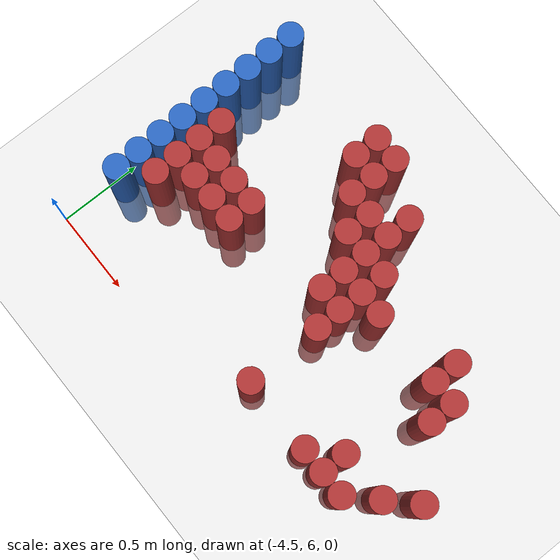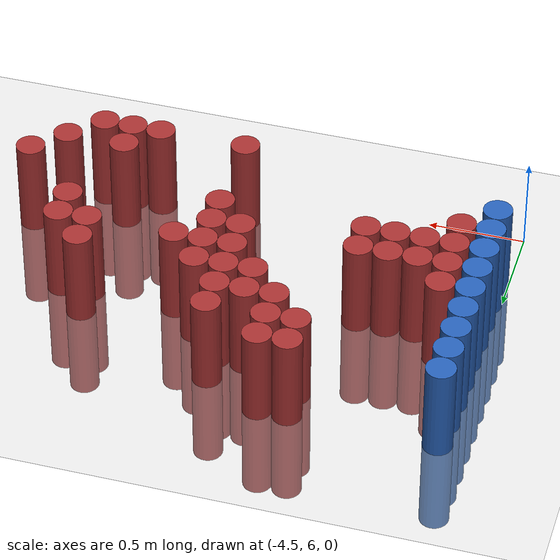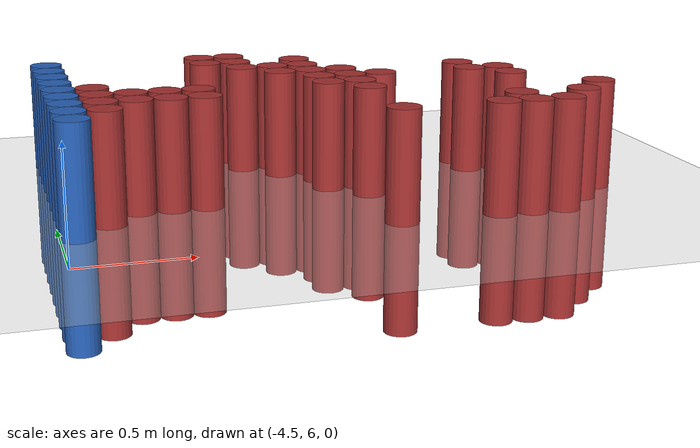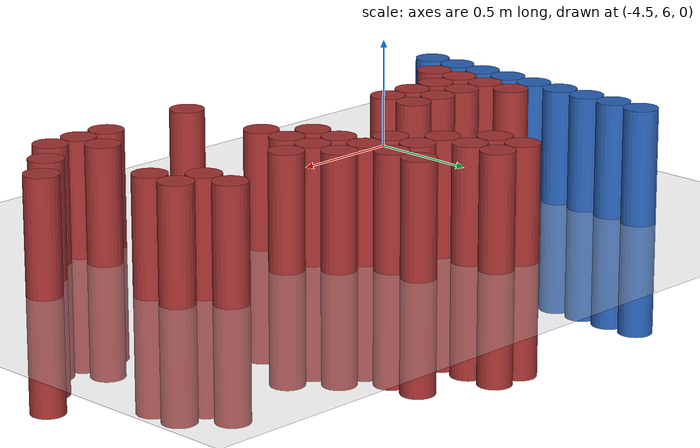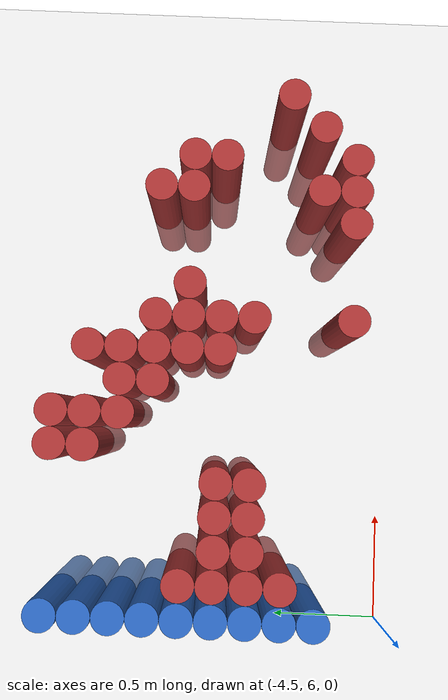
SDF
<sdf version="1.6">
 <world name="default">
  <model name="ground_plane">
   <static>1</static>
   <link name="link">
    <collision name="collision">
     <geometry><plane><normal>0 0 1</normal><size>100 100</size></plane></geometry>
     <surface><friction><ode><mu>100</mu><mu2>50</mu2></ode></friction></surface>
    </collision>
    <visual name="visual">
     <cast_shadows>0</cast_shadows>
     <geometry><plane><normal>0 0 1</normal><size>100 100</size></plane></geometry>
     <material>
      <script><uri>file://media/materials/scripts/gazebo.material</uri><name>Gazebo/Grey</name></script>
     </material>
    </visual>
   </link>
  </model>
  <model name="unit_cylinder_104">
   <static>1</static>
   <pose>-4.425000 6.375000 0.000000 0.000000 0.000000 0.000000</pose>
   <link name="link">
    <inertial>
     <mass>1</mass>
     <inertia><ixx>0.145833</ixx><ixy>0</ixy><ixz>0</ixz><iyy>0.145833</iyy><iyz>0</iyz><izz>0.125</izz></inertia>
    </inertial>
    <collision name="collision">
     <geometry><cylinder><radius>0.075000</radius><length>1</length></cylinder></geometry>
    </collision>
    <visual name="visual">
     <geometry><cylinder><radius>0.075000</radius><length>1</length></cylinder></geometry>
     <material>
      <ambient>0.152000 0.379000 0.720000 1</ambient>
      <diffuse>0.152000 0.379000 0.720000 1</diffuse>
     </material>
     <material>
      <script><name>Gazebo/Grey</name><uri>file://media/materials/scripts/gazebo.material</uri></script>
     </material>
    </visual>
   </link>
  </model>
  <model name="unit_cylinder_105">
   <static>1</static>
   <pose>-4.425000 6.525000 0.000000 0.000000 0.000000 0.000000</pose>
   <link name="link">
    <inertial>
     <mass>1</mass>
     <inertia><ixx>0.145833</ixx><ixy>0</ixy><ixz>0</ixz><iyy>0.145833</iyy><iyz>0</iyz><izz>0.125</izz></inertia>
    </inertial>
    <collision name="collision">
     <geometry><cylinder><radius>0.075000</radius><length>1</length></cylinder></geometry>
    </collision>
    <visual name="visual">
     <geometry><cylinder><radius>0.075000</radius><length>1</length></cylinder></geometry>
     <material>
      <ambient>0.152000 0.379000 0.720000 1</ambient>
      <diffuse>0.152000 0.379000 0.720000 1</diffuse>
     </material>
     <material>
      <script><name>Gazebo/Grey</name><uri>file://media/materials/scripts/gazebo.material</uri></script>
     </material>
    </visual>
   </link>
  </model>
  <model name="unit_cylinder_106">
   <static>1</static>
   <pose>-4.425000 6.675000 0.000000 0.000000 0.000000 0.000000</pose>
   <link name="link">
    <inertial>
     <mass>1</mass>
     <inertia><ixx>0.145833</ixx><ixy>0</ixy><ixz>0</ixz><iyy>0.145833</iyy><iyz>0</iyz><izz>0.125</izz></inertia>
    </inertial>
    <collision name="collision">
     <geometry><cylinder><radius>0.075000</radius><length>1</length></cylinder></geometry>
    </collision>
    <visual name="visual">
     <geometry><cylinder><radius>0.075000</radius><length>1</length></cylinder></geometry>
     <material>
      <ambient>0.152000 0.379000 0.720000 1</ambient>
      <diffuse>0.152000 0.379000 0.720000 1</diffuse>
     </material>
     <material>
      <script><name>Gazebo/Grey</name><uri>file://media/materials/scripts/gazebo.material</uri></script>
     </material>
    </visual>
   </link>
  </model>
  <model name="unit_cylinder_107">
   <static>1</static>
   <pose>-4.425000 6.825000 0.000000 0.000000 0.000000 0.000000</pose>
   <link name="link">
    <inertial>
     <mass>1</mass>
     <inertia><ixx>0.145833</ixx><ixy>0</ixy><ixz>0</ixz><iyy>0.145833</iyy><iyz>0</iyz><izz>0.125</izz></inertia>
    </inertial>
    <collision name="collision">
     <geometry><cylinder><radius>0.075000</radius><length>1</length></cylinder></geometry>
    </collision>
    <visual name="visual">
     <geometry><cylinder><radius>0.075000</radius><length>1</length></cylinder></geometry>
     <material>
      <ambient>0.152000 0.379000 0.720000 1</ambient>
      <diffuse>0.152000 0.379000 0.720000 1</diffuse>
     </material>
     <material>
      <script><name>Gazebo/Grey</name><uri>file://media/materials/scripts/gazebo.material</uri></script>
     </material>
    </visual>
   </link>
  </model>
  <model name="unit_cylinder_108">
   <static>1</static>
   <pose>-4.425000 6.975000 0.000000 0.000000 0.000000 0.000000</pose>
   <link name="link">
    <inertial>
     <mass>1</mass>
     <inertia><ixx>0.145833</ixx><ixy>0</ixy><ixz>0</ixz><iyy>0.145833</iyy><iyz>0</iyz><izz>0.125</izz></inertia>
    </inertial>
    <collision name="collision">
     <geometry><cylinder><radius>0.075000</radius><length>1</length></cylinder></geometry>
    </collision>
    <visual name="visual">
     <geometry><cylinder><radius>0.075000</radius><length>1</length></cylinder></geometry>
     <material>
      <ambient>0.152000 0.379000 0.720000 1</ambient>
      <diffuse>0.152000 0.379000 0.720000 1</diffuse>
     </material>
     <material>
      <script><name>Gazebo/Grey</name><uri>file://media/materials/scripts/gazebo.material</uri></script>
     </material>
    </visual>
   </link>
  </model>
  <model name="unit_cylinder_109">
   <static>1</static>
   <pose>-4.425000 7.125000 0.000000 0.000000 0.000000 0.000000</pose>
   <link name="link">
    <inertial>
     <mass>1</mass>
     <inertia><ixx>0.145833</ixx><ixy>0</ixy><ixz>0</ixz><iyy>0.145833</iyy><iyz>0</iyz><izz>0.125</izz></inertia>
    </inertial>
    <collision name="collision">
     <geometry><cylinder><radius>0.075000</radius><length>1</length></cylinder></geometry>
    </collision>
    <visual name="visual">
     <geometry><cylinder><radius>0.075000</radius><length>1</length></cylinder></geometry>
     <material>
      <ambient>0.152000 0.379000 0.720000 1</ambient>
      <diffuse>0.152000 0.379000 0.720000 1</diffuse>
     </material>
     <material>
      <script><name>Gazebo/Grey</name><uri>file://media/materials/scripts/gazebo.material</uri></script>
     </material>
    </visual>
   </link>
  </model>
  <model name="unit_cylinder_110">
   <static>1</static>
   <pose>-4.425000 7.275000 0.000000 0.000000 0.000000 0.000000</pose>
   <link name="link">
    <inertial>
     <mass>1</mass>
     <inertia><ixx>0.145833</ixx><ixy>0</ixy><ixz>0</ixz><iyy>0.145833</iyy><iyz>0</iyz><izz>0.125</izz></inertia>
    </inertial>
    <collision name="collision">
     <geometry><cylinder><radius>0.075000</radius><length>1</length></cylinder></geometry>
    </collision>
    <visual name="visual">
     <geometry><cylinder><radius>0.075000</radius><length>1</length></cylinder></geometry>
     <material>
      <ambient>0.152000 0.379000 0.720000 1</ambient>
      <diffuse>0.152000 0.379000 0.720000 1</diffuse>
     </material>
     <material>
      <script><name>Gazebo/Grey</name><uri>file://media/materials/scripts/gazebo.material</uri></script>
     </material>
    </visual>
   </link>
  </model>
  <model name="unit_cylinder_111">
   <static>1</static>
   <pose>-4.425000 7.425000 0.000000 0.000000 0.000000 0.000000</pose>
   <link name="link">
    <inertial>
     <mass>1</mass>
     <inertia><ixx>0.145833</ixx><ixy>0</ixy><ixz>0</ixz><iyy>0.145833</iyy><iyz>0</iyz><izz>0.125</izz></inertia>
    </inertial>
    <collision name="collision">
     <geometry><cylinder><radius>0.075000</radius><length>1</length></cylinder></geometry>
    </collision>
    <visual name="visual">
     <geometry><cylinder><radius>0.075000</radius><length>1</length></cylinder></geometry>
     <material>
      <ambient>0.152000 0.379000 0.720000 1</ambient>
      <diffuse>0.152000 0.379000 0.720000 1</diffuse>
     </material>
     <material>
      <script><name>Gazebo/Grey</name><uri>file://media/materials/scripts/gazebo.material</uri></script>
     </material>
    </visual>
   </link>
  </model>
  <model name="unit_cylinder_112">
   <static>1</static>
   <pose>-4.425000 7.575000 0.000000 0.000000 0.000000 0.000000</pose>
   <link name="link">
    <inertial>
     <mass>1</mass>
     <inertia><ixx>0.145833</ixx><ixy>0</ixy><ixz>0</ixz><iyy>0.145833</iyy><iyz>0</iyz><izz>0.125</izz></inertia>
    </inertial>
    <collision name="collision">
     <geometry><cylinder><radius>0.075000</radius><length>1</length></cylinder></geometry>
    </collision>
    <visual name="visual">
     <geometry><cylinder><radius>0.075000</radius><length>1</length></cylinder></geometry>
     <material>
      <ambient>0.152000 0.379000 0.720000 1</ambient>
      <diffuse>0.152000 0.379000 0.720000 1</diffuse>
     </material>
     <material>
      <script><name>Gazebo/Grey</name><uri>file://media/materials/scripts/gazebo.material</uri></script>
     </material>
    </visual>
   </link>
  </model>
  <model name="unit_cylinder_129">
   <static>1</static>
   <pose>-4.275000 6.525000 0.000000 0.000000 0.000000 0.000000</pose>
   <link name="link">
    <inertial>
     <mass>1</mass>
     <inertia><ixx>0.145833</ixx><ixy>0</ixy><ixz>0</ixz><iyy>0.145833</iyy><iyz>0</iyz><izz>0.125</izz></inertia>
    </inertial>
    <collision name="collision">
     <geometry><cylinder><radius>0.075000</radius><length>1</length></cylinder></geometry>
    </collision>
    <visual name="visual">
     <geometry><cylinder><radius>0.075000</radius><length>1</length></cylinder></geometry>
     <material>
      <ambient>0.648000 0.192000 0.192000 1</ambient>
      <diffuse>0.648000 0.192000 0.192000 1</diffuse>
     </material>
     <material>
      <script><name>Gazebo/Grey</name><uri>file://media/materials/scripts/gazebo.material</uri></script>
     </material>
    </visual>
   </link>
  </model>
  <model name="unit_cylinder_130">
   <static>1</static>
   <pose>-4.275000 6.675000 0.000000 0.000000 0.000000 0.000000</pose>
   <link name="link">
    <inertial>
     <mass>1</mass>
     <inertia><ixx>0.145833</ixx><ixy>0</ixy><ixz>0</ixz><iyy>0.145833</iyy><iyz>0</iyz><izz>0.125</izz></inertia>
    </inertial>
    <collision name="collision">
     <geometry><cylinder><radius>0.075000</radius><length>1</length></cylinder></geometry>
    </collision>
    <visual name="visual">
     <geometry><cylinder><radius>0.075000</radius><length>1</length></cylinder></geometry>
     <material>
      <ambient>0.648000 0.192000 0.192000 1</ambient>
      <diffuse>0.648000 0.192000 0.192000 1</diffuse>
     </material>
     <material>
      <script><name>Gazebo/Grey</name><uri>file://media/materials/scripts/gazebo.material</uri></script>
     </material>
    </visual>
   </link>
  </model>
  <model name="unit_cylinder_131">
   <static>1</static>
   <pose>-4.275000 6.825000 0.000000 0.000000 0.000000 0.000000</pose>
   <link name="link">
    <inertial>
     <mass>1</mass>
     <inertia><ixx>0.145833</ixx><ixy>0</ixy><ixz>0</ixz><iyy>0.145833</iyy><iyz>0</iyz><izz>0.125</izz></inertia>
    </inertial>
    <collision name="collision">
     <geometry><cylinder><radius>0.075000</radius><length>1</length></cylinder></geometry>
    </collision>
    <visual name="visual">
     <geometry><cylinder><radius>0.075000</radius><length>1</length></cylinder></geometry>
     <material>
      <ambient>0.648000 0.192000 0.192000 1</ambient>
      <diffuse>0.648000 0.192000 0.192000 1</diffuse>
     </material>
     <material>
      <script><name>Gazebo/Grey</name><uri>file://media/materials/scripts/gazebo.material</uri></script>
     </material>
    </visual>
   </link>
  </model>
  <model name="unit_cylinder_132">
   <static>1</static>
   <pose>-4.275000 6.975000 0.000000 0.000000 0.000000 0.000000</pose>
   <link name="link">
    <inertial>
     <mass>1</mass>
     <inertia><ixx>0.145833</ixx><ixy>0</ixy><ixz>0</ixz><iyy>0.145833</iyy><iyz>0</iyz><izz>0.125</izz></inertia>
    </inertial>
    <collision name="collision">
     <geometry><cylinder><radius>0.075000</radius><length>1</length></cylinder></geometry>
    </collision>
    <visual name="visual">
     <geometry><cylinder><radius>0.075000</radius><length>1</length></cylinder></geometry>
     <material>
      <ambient>0.648000 0.192000 0.192000 1</ambient>
      <diffuse>0.648000 0.192000 0.192000 1</diffuse>
     </material>
     <material>
      <script><name>Gazebo/Grey</name><uri>file://media/materials/scripts/gazebo.material</uri></script>
     </material>
    </visual>
   </link>
  </model>
  <model name="unit_cylinder_136">
   <static>1</static>
   <pose>-4.125000 6.675000 0.000000 0.000000 0.000000 0.000000</pose>
   <link name="link">
    <inertial>
     <mass>1</mass>
     <inertia><ixx>0.145833</ixx><ixy>0</ixy><ixz>0</ixz><iyy>0.145833</iyy><iyz>0</iyz><izz>0.125</izz></inertia>
    </inertial>
    <collision name="collision">
     <geometry><cylinder><radius>0.075000</radius><length>1</length></cylinder></geometry>
    </collision>
    <visual name="visual">
     <geometry><cylinder><radius>0.075000</radius><length>1</length></cylinder></geometry>
     <material>
      <ambient>0.648000 0.192000 0.192000 1</ambient>
      <diffuse>0.648000 0.192000 0.192000 1</diffuse>
     </material>
     <material>
      <script><name>Gazebo/Grey</name><uri>file://media/materials/scripts/gazebo.material</uri></script>
     </material>
    </visual>
   </link>
  </model>
  <model name="unit_cylinder_137">
   <static>1</static>
   <pose>-4.125000 6.825000 0.000000 0.000000 0.000000 0.000000</pose>
   <link name="link">
    <inertial>
     <mass>1</mass>
     <inertia><ixx>0.145833</ixx><ixy>0</ixy><ixz>0</ixz><iyy>0.145833</iyy><iyz>0</iyz><izz>0.125</izz></inertia>
    </inertial>
    <collision name="collision">
     <geometry><cylinder><radius>0.075000</radius><length>1</length></cylinder></geometry>
    </collision>
    <visual name="visual">
     <geometry><cylinder><radius>0.075000</radius><length>1</length></cylinder></geometry>
     <material>
      <ambient>0.648000 0.192000 0.192000 1</ambient>
      <diffuse>0.648000 0.192000 0.192000 1</diffuse>
     </material>
     <material>
      <script><name>Gazebo/Grey</name><uri>file://media/materials/scripts/gazebo.material</uri></script>
     </material>
    </visual>
   </link>
  </model>
  <model name="unit_cylinder_145">
   <static>1</static>
   <pose>-3.975000 6.675000 0.000000 0.000000 0.000000 0.000000</pose>
   <link name="link">
    <inertial>
     <mass>1</mass>
     <inertia><ixx>0.145833</ixx><ixy>0</ixy><ixz>0</ixz><iyy>0.145833</iyy><iyz>0</iyz><izz>0.125</izz></inertia>
    </inertial>
    <collision name="collision">
     <geometry><cylinder><radius>0.075000</radius><length>1</length></cylinder></geometry>
    </collision>
    <visual name="visual">
     <geometry><cylinder><radius>0.075000</radius><length>1</length></cylinder></geometry>
     <material>
      <ambient>0.648000 0.192000 0.192000 1</ambient>
      <diffuse>0.648000 0.192000 0.192000 1</diffuse>
     </material>
     <material>
      <script><name>Gazebo/Grey</name><uri>file://media/materials/scripts/gazebo.material</uri></script>
     </material>
    </visual>
   </link>
  </model>
  <model name="unit_cylinder_146">
   <static>1</static>
   <pose>-3.975000 6.825000 0.000000 0.000000 0.000000 0.000000</pose>
   <link name="link">
    <inertial>
     <mass>1</mass>
     <inertia><ixx>0.145833</ixx><ixy>0</ixy><ixz>0</ixz><iyy>0.145833</iyy><iyz>0</iyz><izz>0.125</izz></inertia>
    </inertial>
    <collision name="collision">
     <geometry><cylinder><radius>0.075000</radius><length>1</length></cylinder></geometry>
    </collision>
    <visual name="visual">
     <geometry><cylinder><radius>0.075000</radius><length>1</length></cylinder></geometry>
     <material>
      <ambient>0.648000 0.192000 0.192000 1</ambient>
      <diffuse>0.648000 0.192000 0.192000 1</diffuse>
     </material>
     <material>
      <script><name>Gazebo/Grey</name><uri>file://media/materials/scripts/gazebo.material</uri></script>
     </material>
    </visual>
   </link>
  </model>
  <model name="unit_cylinder_150">
   <static>1</static>
   <pose>-3.825000 6.675000 0.000000 0.000000 0.000000 0.000000</pose>
   <link name="link">
    <inertial>
     <mass>1</mass>
     <inertia><ixx>0.145833</ixx><ixy>0</ixy><ixz>0</ixz><iyy>0.145833</iyy><iyz>0</iyz><izz>0.125</izz></inertia>
    </inertial>
    <collision name="collision">
     <geometry><cylinder><radius>0.075000</radius><length>1</length></cylinder></geometry>
    </collision>
    <visual name="visual">
     <geometry><cylinder><radius>0.075000</radius><length>1</length></cylinder></geometry>
     <material>
      <ambient>0.648000 0.192000 0.192000 1</ambient>
      <diffuse>0.648000 0.192000 0.192000 1</diffuse>
     </material>
     <material>
      <script><name>Gazebo/Grey</name><uri>file://media/materials/scripts/gazebo.material</uri></script>
     </material>
    </visual>
   </link>
  </model>
  <model name="unit_cylinder_151">
   <static>1</static>
   <pose>-3.825000 6.825000 0.000000 0.000000 0.000000 0.000000</pose>
   <link name="link">
    <inertial>
     <mass>1</mass>
     <inertia><ixx>0.145833</ixx><ixy>0</ixy><ixz>0</ixz><iyy>0.145833</iyy><iyz>0</iyz><izz>0.125</izz></inertia>
    </inertial>
    <collision name="collision">
     <geometry><cylinder><radius>0.075000</radius><length>1</length></cylinder></geometry>
    </collision>
    <visual name="visual">
     <geometry><cylinder><radius>0.075000</radius><length>1</length></cylinder></geometry>
     <material>
      <ambient>0.648000 0.192000 0.192000 1</ambient>
      <diffuse>0.648000 0.192000 0.192000 1</diffuse>
     </material>
     <material>
      <script><name>Gazebo/Grey</name><uri>file://media/materials/scripts/gazebo.material</uri></script>
     </material>
    </visual>
   </link>
  </model>
  <model name="unit_cylinder_157">
   <static>1</static>
   <pose>-3.675000 7.425000 0.000000 0.000000 0.000000 0.000000</pose>
   <link name="link">
    <inertial>
     <mass>1</mass>
     <inertia><ixx>0.145833</ixx><ixy>0</ixy><ixz>0</ixz><iyy>0.145833</iyy><iyz>0</iyz><izz>0.125</izz></inertia>
    </inertial>
    <collision name="collision">
     <geometry><cylinder><radius>0.075000</radius><length>1</length></cylinder></geometry>
    </collision>
    <visual name="visual">
     <geometry><cylinder><radius>0.075000</radius><length>1</length></cylinder></geometry>
     <material>
      <ambient>0.648000 0.192000 0.192000 1</ambient>
      <diffuse>0.648000 0.192000 0.192000 1</diffuse>
     </material>
     <material>
      <script><name>Gazebo/Grey</name><uri>file://media/materials/scripts/gazebo.material</uri></script>
     </material>
    </visual>
   </link>
  </model>
  <model name="unit_cylinder_158">
   <static>1</static>
   <pose>-3.675000 7.575000 0.000000 0.000000 0.000000 0.000000</pose>
   <link name="link">
    <inertial>
     <mass>1</mass>
     <inertia><ixx>0.145833</ixx><ixy>0</ixy><ixz>0</ixz><iyy>0.145833</iyy><iyz>0</iyz><izz>0.125</izz></inertia>
    </inertial>
    <collision name="collision">
     <geometry><cylinder><radius>0.075000</radius><length>1</length></cylinder></geometry>
    </collision>
    <visual name="visual">
     <geometry><cylinder><radius>0.075000</radius><length>1</length></cylinder></geometry>
     <material>
      <ambient>0.648000 0.192000 0.192000 1</ambient>
      <diffuse>0.648000 0.192000 0.192000 1</diffuse>
     </material>
     <material>
      <script><name>Gazebo/Grey</name><uri>file://media/materials/scripts/gazebo.material</uri></script>
     </material>
    </visual>
   </link>
  </model>
  <model name="unit_cylinder_164">
   <static>1</static>
   <pose>-3.525000 7.275000 0.000000 0.000000 0.000000 0.000000</pose>
   <link name="link">
    <inertial>
     <mass>1</mass>
     <inertia><ixx>0.145833</ixx><ixy>0</ixy><ixz>0</ixz><iyy>0.145833</iyy><iyz>0</iyz><izz>0.125</izz></inertia>
    </inertial>
    <collision name="collision">
     <geometry><cylinder><radius>0.075000</radius><length>1</length></cylinder></geometry>
    </collision>
    <visual name="visual">
     <geometry><cylinder><radius>0.075000</radius><length>1</length></cylinder></geometry>
     <material>
      <ambient>0.648000 0.192000 0.192000 1</ambient>
      <diffuse>0.648000 0.192000 0.192000 1</diffuse>
     </material>
     <material>
      <script><name>Gazebo/Grey</name><uri>file://media/materials/scripts/gazebo.material</uri></script>
     </material>
    </visual>
   </link>
  </model>
  <model name="unit_cylinder_165">
   <static>1</static>
   <pose>-3.525000 7.425000 0.000000 0.000000 0.000000 0.000000</pose>
   <link name="link">
    <inertial>
     <mass>1</mass>
     <inertia><ixx>0.145833</ixx><ixy>0</ixy><ixz>0</ixz><iyy>0.145833</iyy><iyz>0</iyz><izz>0.125</izz></inertia>
    </inertial>
    <collision name="collision">
     <geometry><cylinder><radius>0.075000</radius><length>1</length></cylinder></geometry>
    </collision>
    <visual name="visual">
     <geometry><cylinder><radius>0.075000</radius><length>1</length></cylinder></geometry>
     <material>
      <ambient>0.648000 0.192000 0.192000 1</ambient>
      <diffuse>0.648000 0.192000 0.192000 1</diffuse>
     </material>
     <material>
      <script><name>Gazebo/Grey</name><uri>file://media/materials/scripts/gazebo.material</uri></script>
     </material>
    </visual>
   </link>
  </model>
  <model name="unit_cylinder_166">
   <static>1</static>
   <pose>-3.525000 7.575000 0.000000 0.000000 0.000000 0.000000</pose>
   <link name="link">
    <inertial>
     <mass>1</mass>
     <inertia><ixx>0.145833</ixx><ixy>0</ixy><ixz>0</ixz><iyy>0.145833</iyy><iyz>0</iyz><izz>0.125</izz></inertia>
    </inertial>
    <collision name="collision">
     <geometry><cylinder><radius>0.075000</radius><length>1</length></cylinder></geometry>
    </collision>
    <visual name="visual">
     <geometry><cylinder><radius>0.075000</radius><length>1</length></cylinder></geometry>
     <material>
      <ambient>0.648000 0.192000 0.192000 1</ambient>
      <diffuse>0.648000 0.192000 0.192000 1</diffuse>
     </material>
     <material>
      <script><name>Gazebo/Grey</name><uri>file://media/materials/scripts/gazebo.material</uri></script>
     </material>
    </visual>
   </link>
  </model>
  <model name="unit_cylinder_174">
   <static>1</static>
   <pose>-3.375000 7.125000 0.000000 0.000000 0.000000 0.000000</pose>
   <link name="link">
    <inertial>
     <mass>1</mass>
     <inertia><ixx>0.145833</ixx><ixy>0</ixy><ixz>0</ixz><iyy>0.145833</iyy><iyz>0</iyz><izz>0.125</izz></inertia>
    </inertial>
    <collision name="collision">
     <geometry><cylinder><radius>0.075000</radius><length>1</length></cylinder></geometry>
    </collision>
    <visual name="visual">
     <geometry><cylinder><radius>0.075000</radius><length>1</length></cylinder></geometry>
     <material>
      <ambient>0.648000 0.192000 0.192000 1</ambient>
      <diffuse>0.648000 0.192000 0.192000 1</diffuse>
     </material>
     <material>
      <script><name>Gazebo/Grey</name><uri>file://media/materials/scripts/gazebo.material</uri></script>
     </material>
    </visual>
   </link>
  </model>
  <model name="unit_cylinder_175">
   <static>1</static>
   <pose>-3.375000 7.275000 0.000000 0.000000 0.000000 0.000000</pose>
   <link name="link">
    <inertial>
     <mass>1</mass>
     <inertia><ixx>0.145833</ixx><ixy>0</ixy><ixz>0</ixz><iyy>0.145833</iyy><iyz>0</iyz><izz>0.125</izz></inertia>
    </inertial>
    <collision name="collision">
     <geometry><cylinder><radius>0.075000</radius><length>1</length></cylinder></geometry>
    </collision>
    <visual name="visual">
     <geometry><cylinder><radius>0.075000</radius><length>1</length></cylinder></geometry>
     <material>
      <ambient>0.648000 0.192000 0.192000 1</ambient>
      <diffuse>0.648000 0.192000 0.192000 1</diffuse>
     </material>
     <material>
      <script><name>Gazebo/Grey</name><uri>file://media/materials/scripts/gazebo.material</uri></script>
     </material>
    </visual>
   </link>
  </model>
  <model name="unit_cylinder_183">
   <static>1</static>
   <pose>-3.225000 6.825000 0.000000 0.000000 0.000000 0.000000</pose>
   <link name="link">
    <inertial>
     <mass>1</mass>
     <inertia><ixx>0.145833</ixx><ixy>0</ixy><ixz>0</ixz><iyy>0.145833</iyy><iyz>0</iyz><izz>0.125</izz></inertia>
    </inertial>
    <collision name="collision">
     <geometry><cylinder><radius>0.075000</radius><length>1</length></cylinder></geometry>
    </collision>
    <visual name="visual">
     <geometry><cylinder><radius>0.075000</radius><length>1</length></cylinder></geometry>
     <material>
      <ambient>0.648000 0.192000 0.192000 1</ambient>
      <diffuse>0.648000 0.192000 0.192000 1</diffuse>
     </material>
     <material>
      <script><name>Gazebo/Grey</name><uri>file://media/materials/scripts/gazebo.material</uri></script>
     </material>
    </visual>
   </link>
  </model>
  <model name="unit_cylinder_184">
   <static>1</static>
   <pose>-3.225000 6.975000 0.000000 0.000000 0.000000 0.000000</pose>
   <link name="link">
    <inertial>
     <mass>1</mass>
     <inertia><ixx>0.145833</ixx><ixy>0</ixy><ixz>0</ixz><iyy>0.145833</iyy><iyz>0</iyz><izz>0.125</izz></inertia>
    </inertial>
    <collision name="collision">
     <geometry><cylinder><radius>0.075000</radius><length>1</length></cylinder></geometry>
    </collision>
    <visual name="visual">
     <geometry><cylinder><radius>0.075000</radius><length>1</length></cylinder></geometry>
     <material>
      <ambient>0.648000 0.192000 0.192000 1</ambient>
      <diffuse>0.648000 0.192000 0.192000 1</diffuse>
     </material>
     <material>
      <script><name>Gazebo/Grey</name><uri>file://media/materials/scripts/gazebo.material</uri></script>
     </material>
    </visual>
   </link>
  </model>
  <model name="unit_cylinder_185">
   <static>1</static>
   <pose>-3.225000 7.125000 0.000000 0.000000 0.000000 0.000000</pose>
   <link name="link">
    <inertial>
     <mass>1</mass>
     <inertia><ixx>0.145833</ixx><ixy>0</ixy><ixz>0</ixz><iyy>0.145833</iyy><iyz>0</iyz><izz>0.125</izz></inertia>
    </inertial>
    <collision name="collision">
     <geometry><cylinder><radius>0.075000</radius><length>1</length></cylinder></geometry>
    </collision>
    <visual name="visual">
     <geometry><cylinder><radius>0.075000</radius><length>1</length></cylinder></geometry>
     <material>
      <ambient>0.648000 0.192000 0.192000 1</ambient>
      <diffuse>0.648000 0.192000 0.192000 1</diffuse>
     </material>
     <material>
      <script><name>Gazebo/Grey</name><uri>file://media/materials/scripts/gazebo.material</uri></script>
     </material>
    </visual>
   </link>
  </model>
  <model name="unit_cylinder_186">
   <static>1</static>
   <pose>-3.225000 7.275000 0.000000 0.000000 0.000000 0.000000</pose>
   <link name="link">
    <inertial>
     <mass>1</mass>
     <inertia><ixx>0.145833</ixx><ixy>0</ixy><ixz>0</ixz><iyy>0.145833</iyy><iyz>0</iyz><izz>0.125</izz></inertia>
    </inertial>
    <collision name="collision">
     <geometry><cylinder><radius>0.075000</radius><length>1</length></cylinder></geometry>
    </collision>
    <visual name="visual">
     <geometry><cylinder><radius>0.075000</radius><length>1</length></cylinder></geometry>
     <material>
      <ambient>0.648000 0.192000 0.192000 1</ambient>
      <diffuse>0.648000 0.192000 0.192000 1</diffuse>
     </material>
     <material>
      <script><name>Gazebo/Grey</name><uri>file://media/materials/scripts/gazebo.material</uri></script>
     </material>
    </visual>
   </link>
  </model>
  <model name="unit_cylinder_187">
   <static>1</static>
   <pose>-3.225000 7.425000 0.000000 0.000000 0.000000 0.000000</pose>
   <link name="link">
    <inertial>
     <mass>1</mass>
     <inertia><ixx>0.145833</ixx><ixy>0</ixy><ixz>0</ixz><iyy>0.145833</iyy><iyz>0</iyz><izz>0.125</izz></inertia>
    </inertial>
    <collision name="collision">
     <geometry><cylinder><radius>0.075000</radius><length>1</length></cylinder></geometry>
    </collision>
    <visual name="visual">
     <geometry><cylinder><radius>0.075000</radius><length>1</length></cylinder></geometry>
     <material>
      <ambient>0.648000 0.192000 0.192000 1</ambient>
      <diffuse>0.648000 0.192000 0.192000 1</diffuse>
     </material>
     <material>
      <script><name>Gazebo/Grey</name><uri>file://media/materials/scripts/gazebo.material</uri></script>
     </material>
    </visual>
   </link>
  </model>
  <model name="unit_cylinder_191">
   <static>1</static>
   <pose>-3.075000 6.225000 0.000000 0.000000 0.000000 0.000000</pose>
   <link name="link">
    <inertial>
     <mass>1</mass>
     <inertia><ixx>0.145833</ixx><ixy>0</ixy><ixz>0</ixz><iyy>0.145833</iyy><iyz>0</iyz><izz>0.125</izz></inertia>
    </inertial>
    <collision name="collision">
     <geometry><cylinder><radius>0.075000</radius><length>1</length></cylinder></geometry>
    </collision>
    <visual name="visual">
     <geometry><cylinder><radius>0.075000</radius><length>1</length></cylinder></geometry>
     <material>
      <ambient>0.648000 0.192000 0.192000 1</ambient>
      <diffuse>0.648000 0.192000 0.192000 1</diffuse>
     </material>
     <material>
      <script><name>Gazebo/Grey</name><uri>file://media/materials/scripts/gazebo.material</uri></script>
     </material>
    </visual>
   </link>
  </model>
  <model name="unit_cylinder_192">
   <static>1</static>
   <pose>-3.075000 6.675000 0.000000 0.000000 0.000000 0.000000</pose>
   <link name="link">
    <inertial>
     <mass>1</mass>
     <inertia><ixx>0.145833</ixx><ixy>0</ixy><ixz>0</ixz><iyy>0.145833</iyy><iyz>0</iyz><izz>0.125</izz></inertia>
    </inertial>
    <collision name="collision">
     <geometry><cylinder><radius>0.075000</radius><length>1</length></cylinder></geometry>
    </collision>
    <visual name="visual">
     <geometry><cylinder><radius>0.075000</radius><length>1</length></cylinder></geometry>
     <material>
      <ambient>0.648000 0.192000 0.192000 1</ambient>
      <diffuse>0.648000 0.192000 0.192000 1</diffuse>
     </material>
     <material>
      <script><name>Gazebo/Grey</name><uri>file://media/materials/scripts/gazebo.material</uri></script>
     </material>
    </visual>
   </link>
  </model>
  <model name="unit_cylinder_193">
   <static>1</static>
   <pose>-3.075000 6.825000 0.000000 0.000000 0.000000 0.000000</pose>
   <link name="link">
    <inertial>
     <mass>1</mass>
     <inertia><ixx>0.145833</ixx><ixy>0</ixy><ixz>0</ixz><iyy>0.145833</iyy><iyz>0</iyz><izz>0.125</izz></inertia>
    </inertial>
    <collision name="collision">
     <geometry><cylinder><radius>0.075000</radius><length>1</length></cylinder></geometry>
    </collision>
    <visual name="visual">
     <geometry><cylinder><radius>0.075000</radius><length>1</length></cylinder></geometry>
     <material>
      <ambient>0.648000 0.192000 0.192000 1</ambient>
      <diffuse>0.648000 0.192000 0.192000 1</diffuse>
     </material>
     <material>
      <script><name>Gazebo/Grey</name><uri>file://media/materials/scripts/gazebo.material</uri></script>
     </material>
    </visual>
   </link>
  </model>
  <model name="unit_cylinder_194">
   <static>1</static>
   <pose>-3.075000 6.975000 0.000000 0.000000 0.000000 0.000000</pose>
   <link name="link">
    <inertial>
     <mass>1</mass>
     <inertia><ixx>0.145833</ixx><ixy>0</ixy><ixz>0</ixz><iyy>0.145833</iyy><iyz>0</iyz><izz>0.125</izz></inertia>
    </inertial>
    <collision name="collision">
     <geometry><cylinder><radius>0.075000</radius><length>1</length></cylinder></geometry>
    </collision>
    <visual name="visual">
     <geometry><cylinder><radius>0.075000</radius><length>1</length></cylinder></geometry>
     <material>
      <ambient>0.648000 0.192000 0.192000 1</ambient>
      <diffuse>0.648000 0.192000 0.192000 1</diffuse>
     </material>
     <material>
      <script><name>Gazebo/Grey</name><uri>file://media/materials/scripts/gazebo.material</uri></script>
     </material>
    </visual>
   </link>
  </model>
  <model name="unit_cylinder_195">
   <static>1</static>
   <pose>-3.075000 7.125000 0.000000 0.000000 0.000000 0.000000</pose>
   <link name="link">
    <inertial>
     <mass>1</mass>
     <inertia><ixx>0.145833</ixx><ixy>0</ixy><ixz>0</ixz><iyy>0.145833</iyy><iyz>0</iyz><izz>0.125</izz></inertia>
    </inertial>
    <collision name="collision">
     <geometry><cylinder><radius>0.075000</radius><length>1</length></cylinder></geometry>
    </collision>
    <visual name="visual">
     <geometry><cylinder><radius>0.075000</radius><length>1</length></cylinder></geometry>
     <material>
      <ambient>0.648000 0.192000 0.192000 1</ambient>
      <diffuse>0.648000 0.192000 0.192000 1</diffuse>
     </material>
     <material>
      <script><name>Gazebo/Grey</name><uri>file://media/materials/scripts/gazebo.material</uri></script>
     </material>
    </visual>
   </link>
  </model>
  <model name="unit_cylinder_198">
   <static>1</static>
   <pose>-2.925000 6.975000 0.000000 0.000000 0.000000 0.000000</pose>
   <link name="link">
    <inertial>
     <mass>1</mass>
     <inertia><ixx>0.145833</ixx><ixy>0</ixy><ixz>0</ixz><iyy>0.145833</iyy><iyz>0</iyz><izz>0.125</izz></inertia>
    </inertial>
    <collision name="collision">
     <geometry><cylinder><radius>0.075000</radius><length>1</length></cylinder></geometry>
    </collision>
    <visual name="visual">
     <geometry><cylinder><radius>0.075000</radius><length>1</length></cylinder></geometry>
     <material>
      <ambient>0.648000 0.192000 0.192000 1</ambient>
      <diffuse>0.648000 0.192000 0.192000 1</diffuse>
     </material>
     <material>
      <script><name>Gazebo/Grey</name><uri>file://media/materials/scripts/gazebo.material</uri></script>
     </material>
    </visual>
   </link>
  </model>
  <model name="unit_cylinder_201">
   <static>1</static>
   <pose>-2.625000 6.225000 0.000000 0.000000 0.000000 0.000000</pose>
   <link name="link">
    <inertial>
     <mass>1</mass>
     <inertia><ixx>0.145833</ixx><ixy>0</ixy><ixz>0</ixz><iyy>0.145833</iyy><iyz>0</iyz><izz>0.125</izz></inertia>
    </inertial>
    <collision name="collision">
     <geometry><cylinder><radius>0.075000</radius><length>1</length></cylinder></geometry>
    </collision>
    <visual name="visual">
     <geometry><cylinder><radius>0.075000</radius><length>1</length></cylinder></geometry>
     <material>
      <ambient>0.648000 0.192000 0.192000 1</ambient>
      <diffuse>0.648000 0.192000 0.192000 1</diffuse>
     </material>
     <material>
      <script><name>Gazebo/Grey</name><uri>file://media/materials/scripts/gazebo.material</uri></script>
     </material>
    </visual>
   </link>
  </model>
  <model name="unit_cylinder_203">
   <static>1</static>
   <pose>-2.475000 6.225000 0.000000 0.000000 0.000000 0.000000</pose>
   <link name="link">
    <inertial>
     <mass>1</mass>
     <inertia><ixx>0.145833</ixx><ixy>0</ixy><ixz>0</ixz><iyy>0.145833</iyy><iyz>0</iyz><izz>0.125</izz></inertia>
    </inertial>
    <collision name="collision">
     <geometry><cylinder><radius>0.075000</radius><length>1</length></cylinder></geometry>
    </collision>
    <visual name="visual">
     <geometry><cylinder><radius>0.075000</radius><length>1</length></cylinder></geometry>
     <material>
      <ambient>0.648000 0.192000 0.192000 1</ambient>
      <diffuse>0.648000 0.192000 0.192000 1</diffuse>
     </material>
     <material>
      <script><name>Gazebo/Grey</name><uri>file://media/materials/scripts/gazebo.material</uri></script>
     </material>
    </visual>
   </link>
  </model>
  <model name="unit_cylinder_204">
   <static>1</static>
   <pose>-2.475000 6.375000 0.000000 0.000000 0.000000 0.000000</pose>
   <link name="link">
    <inertial>
     <mass>1</mass>
     <inertia><ixx>0.145833</ixx><ixy>0</ixy><ixz>0</ixz><iyy>0.145833</iyy><iyz>0</iyz><izz>0.125</izz></inertia>
    </inertial>
    <collision name="collision">
     <geometry><cylinder><radius>0.075000</radius><length>1</length></cylinder></geometry>
    </collision>
    <visual name="visual">
     <geometry><cylinder><radius>0.075000</radius><length>1</length></cylinder></geometry>
     <material>
      <ambient>0.648000 0.192000 0.192000 1</ambient>
      <diffuse>0.648000 0.192000 0.192000 1</diffuse>
     </material>
     <material>
      <script><name>Gazebo/Grey</name><uri>file://media/materials/scripts/gazebo.material</uri></script>
     </material>
    </visual>
   </link>
  </model>
  <model name="unit_cylinder_205">
   <static>1</static>
   <pose>-2.475000 6.975000 0.000000 0.000000 0.000000 0.000000</pose>
   <link name="link">
    <inertial>
     <mass>1</mass>
     <inertia><ixx>0.145833</ixx><ixy>0</ixy><ixz>0</ixz><iyy>0.145833</iyy><iyz>0</iyz><izz>0.125</izz></inertia>
    </inertial>
    <collision name="collision">
     <geometry><cylinder><radius>0.075000</radius><length>1</length></cylinder></geometry>
    </collision>
    <visual name="visual">
     <geometry><cylinder><radius>0.075000</radius><length>1</length></cylinder></geometry>
     <material>
      <ambient>0.648000 0.192000 0.192000 1</ambient>
      <diffuse>0.648000 0.192000 0.192000 1</diffuse>
     </material>
     <material>
      <script><name>Gazebo/Grey</name><uri>file://media/materials/scripts/gazebo.material</uri></script>
     </material>
    </visual>
   </link>
  </model>
  <model name="unit_cylinder_206">
   <static>1</static>
   <pose>-2.475000 7.125000 0.000000 0.000000 0.000000 0.000000</pose>
   <link name="link">
    <inertial>
     <mass>1</mass>
     <inertia><ixx>0.145833</ixx><ixy>0</ixy><ixz>0</ixz><iyy>0.145833</iyy><iyz>0</iyz><izz>0.125</izz></inertia>
    </inertial>
    <collision name="collision">
     <geometry><cylinder><radius>0.075000</radius><length>1</length></cylinder></geometry>
    </collision>
    <visual name="visual">
     <geometry><cylinder><radius>0.075000</radius><length>1</length></cylinder></geometry>
     <material>
      <ambient>0.648000 0.192000 0.192000 1</ambient>
      <diffuse>0.648000 0.192000 0.192000 1</diffuse>
     </material>
     <material>
      <script><name>Gazebo/Grey</name><uri>file://media/materials/scripts/gazebo.material</uri></script>
     </material>
    </visual>
   </link>
  </model>
  <model name="unit_cylinder_213">
   <static>1</static>
   <pose>-2.325000 6.225000 0.000000 0.000000 0.000000 0.000000</pose>
   <link name="link">
    <inertial>
     <mass>1</mass>
     <inertia><ixx>0.145833</ixx><ixy>0</ixy><ixz>0</ixz><iyy>0.145833</iyy><iyz>0</iyz><izz>0.125</izz></inertia>
    </inertial>
    <collision name="collision">
     <geometry><cylinder><radius>0.075000</radius><length>1</length></cylinder></geometry>
    </collision>
    <visual name="visual">
     <geometry><cylinder><radius>0.075000</radius><length>1</length></cylinder></geometry>
     <material>
      <ambient>0.648000 0.192000 0.192000 1</ambient>
      <diffuse>0.648000 0.192000 0.192000 1</diffuse>
     </material>
     <material>
      <script><name>Gazebo/Grey</name><uri>file://media/materials/scripts/gazebo.material</uri></script>
     </material>
    </visual>
   </link>
  </model>
  <model name="unit_cylinder_214">
   <static>1</static>
   <pose>-2.325000 6.825000 0.000000 0.000000 0.000000 0.000000</pose>
   <link name="link">
    <inertial>
     <mass>1</mass>
     <inertia><ixx>0.145833</ixx><ixy>0</ixy><ixz>0</ixz><iyy>0.145833</iyy><iyz>0</iyz><izz>0.125</izz></inertia>
    </inertial>
    <collision name="collision">
     <geometry><cylinder><radius>0.075000</radius><length>1</length></cylinder></geometry>
    </collision>
    <visual name="visual">
     <geometry><cylinder><radius>0.075000</radius><length>1</length></cylinder></geometry>
     <material>
      <ambient>0.648000 0.192000 0.192000 1</ambient>
      <diffuse>0.648000 0.192000 0.192000 1</diffuse>
     </material>
     <material>
      <script><name>Gazebo/Grey</name><uri>file://media/materials/scripts/gazebo.material</uri></script>
     </material>
    </visual>
   </link>
  </model>
  <model name="unit_cylinder_215">
   <static>1</static>
   <pose>-2.325000 6.975000 0.000000 0.000000 0.000000 0.000000</pose>
   <link name="link">
    <inertial>
     <mass>1</mass>
     <inertia><ixx>0.145833</ixx><ixy>0</ixy><ixz>0</ixz><iyy>0.145833</iyy><iyz>0</iyz><izz>0.125</izz></inertia>
    </inertial>
    <collision name="collision">
     <geometry><cylinder><radius>0.075000</radius><length>1</length></cylinder></geometry>
    </collision>
    <visual name="visual">
     <geometry><cylinder><radius>0.075000</radius><length>1</length></cylinder></geometry>
     <material>
      <ambient>0.648000 0.192000 0.192000 1</ambient>
      <diffuse>0.648000 0.192000 0.192000 1</diffuse>
     </material>
     <material>
      <script><name>Gazebo/Grey</name><uri>file://media/materials/scripts/gazebo.material</uri></script>
     </material>
    </visual>
   </link>
  </model>
  <model name="unit_cylinder_219">
   <static>1</static>
   <pose>-2.175000 6.375000 0.000000 0.000000 0.000000 0.000000</pose>
   <link name="link">
    <inertial>
     <mass>1</mass>
     <inertia><ixx>0.145833</ixx><ixy>0</ixy><ixz>0</ixz><iyy>0.145833</iyy><iyz>0</iyz><izz>0.125</izz></inertia>
    </inertial>
    <collision name="collision">
     <geometry><cylinder><radius>0.075000</radius><length>1</length></cylinder></geometry>
    </collision>
    <visual name="visual">
     <geometry><cylinder><radius>0.075000</radius><length>1</length></cylinder></geometry>
     <material>
      <ambient>0.648000 0.192000 0.192000 1</ambient>
      <diffuse>0.648000 0.192000 0.192000 1</diffuse>
     </material>
     <material>
      <script><name>Gazebo/Grey</name><uri>file://media/materials/scripts/gazebo.material</uri></script>
     </material>
    </visual>
   </link>
  </model>
  <model name="unit_cylinder_220">
   <static>1</static>
   <pose>-2.025000 6.525000 0.000000 0.000000 0.000000 0.000000</pose>
   <link name="link">
    <inertial>
     <mass>1</mass>
     <inertia><ixx>0.145833</ixx><ixy>0</ixy><ixz>0</ixz><iyy>0.145833</iyy><iyz>0</iyz><izz>0.125</izz></inertia>
    </inertial>
    <collision name="collision">
     <geometry><cylinder><radius>0.075000</radius><length>1</length></cylinder></geometry>
    </collision>
    <visual name="visual">
     <geometry><cylinder><radius>0.075000</radius><length>1</length></cylinder></geometry>
     <material>
      <ambient>0.648000 0.192000 0.192000 1</ambient>
      <diffuse>0.648000 0.192000 0.192000 1</diffuse>
     </material>
     <material>
      <script><name>Gazebo/Grey</name><uri>file://media/materials/scripts/gazebo.material</uri></script>
     </material>
    </visual>
   </link>
  </model>
 </world>
</sdf>
